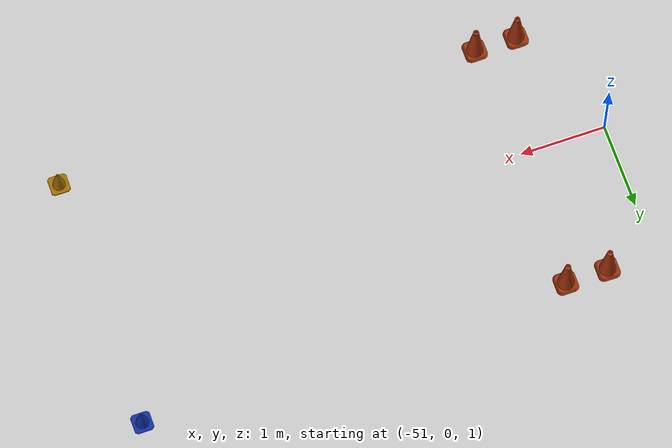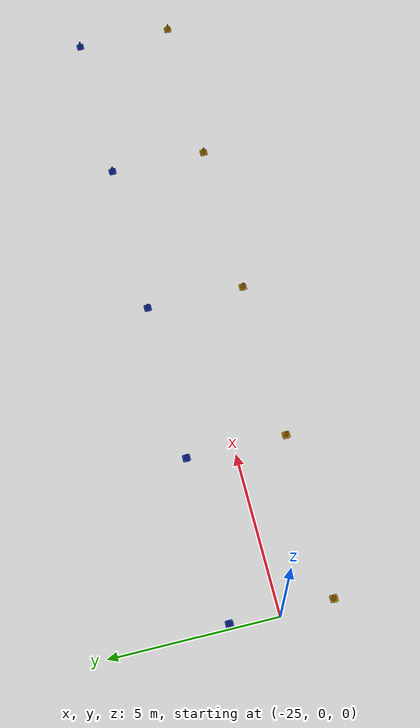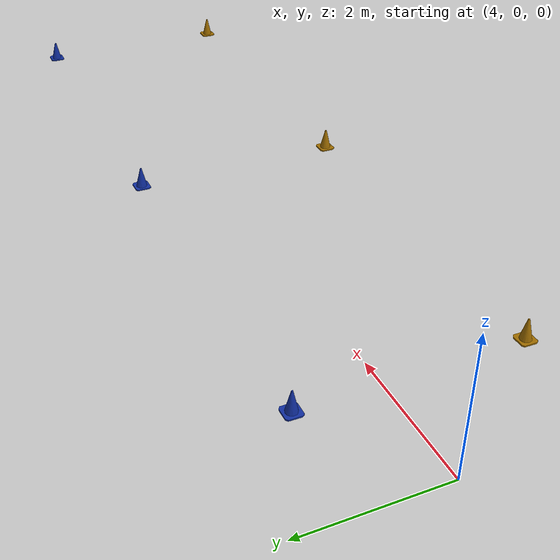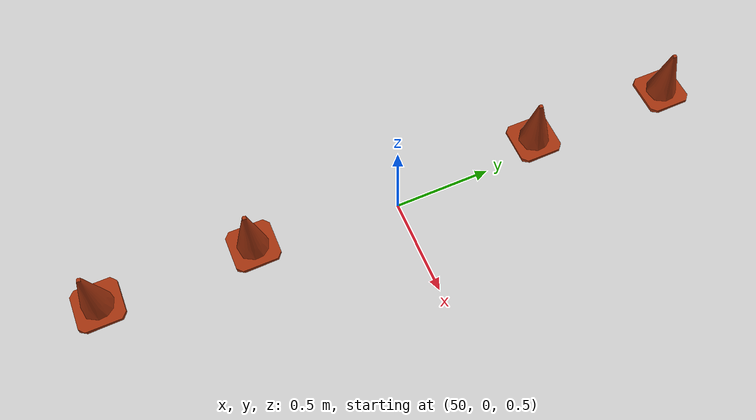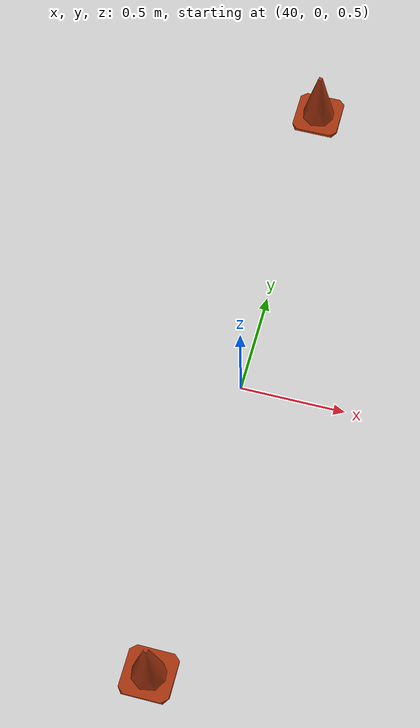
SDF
<sdf version='1.6'>
  <world name='acceleration'>
    <gui fullscreen='0'>
      <camera name='user_camera'>
        <pose frame=''>-40 40 20 0 0.667643 -1</pose>
        <view_controller>orbit</view_controller>
        <projection_type>perspective</projection_type>
      </camera>
    </gui>

    <!-- WORLD SETTINGS -->
    <scene>
      <ambient>1.0 1.0 1.0 1.0</ambient>
      <shadows>false</shadows>
    </scene>

    <spherical_coordinates>
      <heading_deg>180</heading_deg>

      <!-- Appleton Tower coordinates -->
      <latitude_deg>-27.690733</latitude_deg>
      <longitude_deg>152.656715</longitude_deg>
    </spherical_coordinates>

    <light name='sun' type='directional'>
      <cast_shadows>1</cast_shadows>
      <pose frame=''>0 0 10 0 -0 0</pose>
      <diffuse>0.8 0.8 0.8 1</diffuse>
      <specular>0.1 0.1 0.1 1</specular>
      <attenuation>
        <range>1000</range>
        <constant>0.9</constant>
        <linear>0.01</linear>
        <quadratic>0.001</quadratic>
      </attenuation>
      <direction>-0.5 0.5 -1</direction>
    </light>

    <!-- MODELS -->
    <include>
      <uri>model://ground_plane</uri>
      <pose>0.0 0.0 0.0 0 0 0</pose>
    </include>

    <include>
      <uri>model://acceleration</uri>
      <pose>0 0 0.5 0 0 0</pose>
    </include>

  </world>
</sdf>

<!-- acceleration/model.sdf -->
<sdf version='1.6'>
  <model name='track'>

    <include>
      <pose>-45.0 1.5 0.15 0 0 0</pose>
      <uri>model://blue_cone</uri>
      <name>blue_cone_0</name>

      <covariance x="0.01" y="0.01" xy="0.0"/>

    </include>

    <include>
      <pose>-40.0 1.5 0.15 0 0 0</pose>
      <uri>model://blue_cone</uri>
      <name>blue_cone_1</name>

      <covariance x="0.01" y="0.01" xy="0.0"/>

    </include>

    <include>
      <pose>-35.0 1.5 0.15 0 0 0</pose>
      <uri>model://blue_cone</uri>
      <name>blue_cone_2</name>

      <covariance x="0.01" y="0.01" xy="0.0"/>

    </include>

    <include>
      <pose>-30.0 1.5 0.15 0 0 0</pose>
      <uri>model://blue_cone</uri>
      <name>blue_cone_3</name>

      <covariance x="0.01" y="0.01" xy="0.0"/>

    </include>

    <include>
      <pose>-25.0 1.5 0.15 0 0 0</pose>
      <uri>model://blue_cone</uri>
      <name>blue_cone_4</name>

      <covariance x="0.01" y="0.01" xy="0.0"/>

    </include>

    <include>
      <pose>-20.0 1.5 0.15 0 0 0</pose>
      <uri>model://blue_cone</uri>
      <name>blue_cone_5</name>

      <covariance x="0.01" y="0.01" xy="0.0"/>

    </include>

    <include>
      <pose>-15.0 1.5 0.15 0 0 0</pose>
      <uri>model://blue_cone</uri>
      <name>blue_cone_6</name>

      <covariance x="0.01" y="0.01" xy="0.0"/>

    </include>

    <include>
      <pose>-10.0 1.5 0.15 0 0 0</pose>
      <uri>model://blue_cone</uri>
      <name>blue_cone_7</name>

      <covariance x="0.01" y="0.01" xy="0.0"/>

    </include>

    <include>
      <pose>-5.0 1.5 0.15 0 0 0</pose>
      <uri>model://blue_cone</uri>
      <name>blue_cone_8</name>

      <covariance x="0.01" y="0.01" xy="0.0"/>

    </include>

    <include>
      <pose>0.0 1.5 0.15 0 0 0</pose>
      <uri>model://blue_cone</uri>
      <name>blue_cone_9</name>

      <covariance x="0.01" y="0.01" xy="0.0"/>

    </include>

    <include>
      <pose>5.0 1.5 0.15 0 0 0</pose>
      <uri>model://blue_cone</uri>
      <name>blue_cone_10</name>

      <covariance x="0.01" y="0.01" xy="0.0"/>

    </include>

    <include>
      <pose>10.0 1.5 0.15 0 0 0</pose>
      <uri>model://blue_cone</uri>
      <name>blue_cone_11</name>

      <covariance x="0.01" y="0.01" xy="0.0"/>

    </include>

    <include>
      <pose>15.0 1.5 0.15 0 0 0</pose>
      <uri>model://blue_cone</uri>
      <name>blue_cone_12</name>

      <covariance x="0.01" y="0.01" xy="0.0"/>

    </include>

    <include>
      <pose>20.0 1.5 0.15 0 0 0</pose>
      <uri>model://blue_cone</uri>
      <name>blue_cone_13</name>

      <covariance x="0.01" y="0.01" xy="0.0"/>

    </include>

    <include>
      <pose>-45.0 -1.5 0.15 0 0 0</pose>
      <uri>model://yellow_cone</uri>
      <name>yellow_cone_14</name>

      <covariance x="0.01" y="0.01" xy="0.0"/>

    </include>

    <include>
      <pose>-40.0 -1.5 0.15 0 0 0</pose>
      <uri>model://yellow_cone</uri>
      <name>yellow_cone_15</name>

      <covariance x="0.01" y="0.01" xy="0.0"/>

    </include>

    <include>
      <pose>-35.0 -1.5 0.15 0 0 0</pose>
      <uri>model://yellow_cone</uri>
      <name>yellow_cone_16</name>

      <covariance x="0.01" y="0.01" xy="0.0"/>

    </include>

    <include>
      <pose>-30.0 -1.5 0.15 0 0 0</pose>
      <uri>model://yellow_cone</uri>
      <name>yellow_cone_17</name>

      <covariance x="0.01" y="0.01" xy="0.0"/>

    </include>

    <include>
      <pose>-25.0 -1.5 0.15 0 0 0</pose>
      <uri>model://yellow_cone</uri>
      <name>yellow_cone_18</name>

      <covariance x="0.01" y="0.01" xy="0.0"/>

    </include>

    <include>
      <pose>-20.0 -1.5 0.15 0 0 0</pose>
      <uri>model://yellow_cone</uri>
      <name>yellow_cone_19</name>

      <covariance x="0.01" y="0.01" xy="0.0"/>

    </include>

    <include>
      <pose>-15.0 -1.5 0.15 0 0 0</pose>
      <uri>model://yellow_cone</uri>
      <name>yellow_cone_20</name>

      <covariance x="0.01" y="0.01" xy="0.0"/>

    </include>

    <include>
      <pose>-10.0 -1.5 0.15 0 0 0</pose>
      <uri>model://yellow_cone</uri>
      <name>yellow_cone_21</name>

      <covariance x="0.01" y="0.01" xy="0.0"/>

    </include>

    <include>
      <pose>-5.0 -1.5 0.15 0 0 0</pose>
      <uri>model://yellow_cone</uri>
      <name>yellow_cone_22</name>

      <covariance x="0.01" y="0.01" xy="0.0"/>

    </include>

    <include>
      <pose>0.0 -1.5 0.15 0 0 0</pose>
      <uri>model://yellow_cone</uri>
      <name>yellow_cone_23</name>

      <covariance x="0.01" y="0.01" xy="0.0"/>

    </include>

    <include>
      <pose>5.0 -1.5 0.15 0 0 0</pose>
      <uri>model://yellow_cone</uri>
      <name>yellow_cone_24</name>

      <covariance x="0.01" y="0.01" xy="0.0"/>

    </include>

    <include>
      <pose>10.0 -1.5 0.15 0 0 0</pose>
      <uri>model://yellow_cone</uri>
      <name>yellow_cone_25</name>

      <covariance x="0.01" y="0.01" xy="0.0"/>

    </include>

    <include>
      <pose>15.0 -1.5 0.15 0 0 0</pose>
      <uri>model://yellow_cone</uri>
      <name>yellow_cone_26</name>

      <covariance x="0.01" y="0.01" xy="0.0"/>

    </include>

    <include>
      <pose>20.0 -1.5 0.15 0 0 0</pose>
      <uri>model://yellow_cone</uri>
      <name>yellow_cone_27</name>

      <covariance x="0.01" y="0.01" xy="0.0"/>

    </include>

    <include>
      <pose>30.0 1.5 0.15 0 0 0</pose>
      <uri>model://orange_cone</uri>
      <name>orange_cone_28</name>

      <covariance x="0.01" y="0.01" xy="0.0"/>

    </include>

    <include>
      <pose>30.0 -1.5 0.15 0 0 0</pose>
      <uri>model://orange_cone</uri>
      <name>orange_cone_29</name>

      <covariance x="0.01" y="0.01" xy="0.0"/>

    </include>

    <include>
      <pose>35.0 1.5 0.15 0 0 0</pose>
      <uri>model://orange_cone</uri>
      <name>orange_cone_30</name>

      <covariance x="0.01" y="0.01" xy="0.0"/>

    </include>

    <include>
      <pose>35.0 -1.5 0.15 0 0 0</pose>
      <uri>model://orange_cone</uri>
      <name>orange_cone_31</name>

      <covariance x="0.01" y="0.01" xy="0.0"/>

    </include>

    <include>
      <pose>40.0 1.5 0.15 0 0 0</pose>
      <uri>model://orange_cone</uri>
      <name>orange_cone_32</name>

      <covariance x="0.01" y="0.01" xy="0.0"/>

    </include>

    <include>
      <pose>40.0 -1.5 0.15 0 0 0</pose>
      <uri>model://orange_cone</uri>
      <name>orange_cone_33</name>

      <covariance x="0.01" y="0.01" xy="0.0"/>

    </include>

    <include>
      <pose>45.0 1.5 0.15 0 0 0</pose>
      <uri>model://orange_cone</uri>
      <name>orange_cone_34</name>

      <covariance x="0.01" y="0.01" xy="0.0"/>

    </include>

    <include>
      <pose>45.0 -1.5 0.15 0 0 0</pose>
      <uri>model://orange_cone</uri>
      <name>orange_cone_35</name>

      <covariance x="0.01" y="0.01" xy="0.0"/>

    </include>

    <include>
      <pose>50.0 1.5 0.15 0 0 0</pose>
      <uri>model://orange_cone</uri>
      <name>orange_cone_36</name>

      <covariance x="0.01" y="0.01" xy="0.0"/>

    </include>

    <include>
      <pose>50.0 -1.5 0.15 0 0 0</pose>
      <uri>model://orange_cone</uri>
      <name>orange_cone_37</name>

      <covariance x="0.01" y="0.01" xy="0.0"/>

    </include>

    <include>
      <pose>50.0 0.75 0.15 0 0 0</pose>
      <uri>model://orange_cone</uri>
      <name>orange_cone_38</name>

      <covariance x="0.01" y="0.01" xy="0.0"/>

    </include>

    <include>
      <pose>50.0 -0.75 0.15 0 0 0</pose>
      <uri>model://orange_cone</uri>
      <name>orange_cone_39</name>

      <covariance x="0.01" y="0.01" xy="0.0"/>

    </include>

    <include>
      <pose>-50.0 1.5 0.15 0 0 0</pose>
      <uri>model://big_cone</uri>
      <name>big_cone_40</name>

      <covariance x="0.01" y="0.01" xy="0.0"/>

    </include>

    <include>
      <pose>-50.0 -1.5 0.15 0 0 0</pose>
      <uri>model://big_cone</uri>
      <name>big_cone_41</name>

      <covariance x="0.01" y="0.01" xy="0.0"/>

    </include>

    <include>
      <pose>-50.5 1.5 0.15 0 0 0</pose>
      <uri>model://big_cone</uri>
      <name>big_cone_42</name>

      <covariance x="0.01" y="0.01" xy="0.0"/>

    </include>

    <include>
      <pose>-50.5 -1.5 0.15 0 0 0</pose>
      <uri>model://big_cone</uri>
      <name>big_cone_43</name>

      <covariance x="0.01" y="0.01" xy="0.0"/>

    </include>

    <include>
      <pose>25.0 1.5 0.15 0 0 0</pose>
      <uri>model://big_cone</uri>
      <name>big_cone_44</name>

      <covariance x="0.01" y="0.01" xy="0.0"/>

    </include>

    <include>
      <pose>25.0 -1.5 0.15 0 0 0</pose>
      <uri>model://big_cone</uri>
      <name>big_cone_45</name>

      <covariance x="0.01" y="0.01" xy="0.0"/>

    </include>

    <static>0</static>
    <allow_auto_disable>1</allow_auto_disable>
  </model>
</sdf>

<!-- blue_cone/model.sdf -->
<sdf version='1.6'>
  <model name='blue_cone'>
    <link name='link'>
      <pose frame=''>0 0 0 0 0 0</pose>
      <inertial>
        <inertia>
          <ixx>0.0016</ixx>
          <ixy>0</ixy>
          <ixz>0</ixz>
          <iyy>0.0016</iyy>
          <iyz>0</iyz>
          <izz>0.0010</izz>
        </inertia>
        <mass>0.45</mass>
      </inertial>
      <visual name='visual'>
        <geometry>
          <mesh>
            <uri>model://cone_blue.dae</uri>
          </mesh>
        </geometry>
        <cast_shadows>1</cast_shadows>
      </visual>
      <collision name='collision'>
        <max_contacts>3</max_contacts>
        <geometry>
          <mesh>
            <uri>model://cone_blue.dae</uri>
          </mesh>
        </geometry>
      </collision>
    </link>
  </model>
</sdf>

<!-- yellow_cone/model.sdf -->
<sdf version='1.6'>
  <model name='yellow_cone'>
    <link name='link'>
      <pose frame=''>0 0 0 0 0 0</pose>
      <inertial>
        <inertia>
          <ixx>0.0016</ixx>
          <ixy>0</ixy>
          <ixz>0</ixz>
          <iyy>0.0016</iyy>
          <iyz>0</iyz>
          <izz>0.0010</izz>
        </inertia>
        <mass>0.45</mass>
      </inertial>
      <visual name='visual'>
        <geometry>
          <mesh>
            <uri>model://cone_yellow.dae</uri>
          </mesh>
        </geometry>
        <cast_shadows>1</cast_shadows>
      </visual>
      <collision name='collision'>
        <max_contacts>3</max_contacts>
        <geometry>
          <mesh>
            <uri>model://cone_yellow.dae</uri>
          </mesh>
        </geometry>
      </collision>
    </link>
  </model>
</sdf>

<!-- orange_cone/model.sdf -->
<sdf version='1.6'>
  <model name='orange_cone'>
    <link name='link'>
      <pose frame=''>0 0 0 0 0 0</pose>
      <inertial>
        <inertia>
          <ixx>0.0016</ixx>
          <ixy>0</ixy>
          <ixz>0</ixz>
          <iyy>0.0016</iyy>
          <iyz>0</iyz>
          <izz>0.0010</izz>
        </inertia>
        <mass>0.45</mass>
      </inertial>
      <visual name='visual'>
        <geometry>
          <mesh>
            <uri>file://cone.dae</uri>
          </mesh>
        </geometry>
        <cast_shadows>1</cast_shadows>
      </visual>
      <collision name='collision'>
        <max_contacts>3</max_contacts>
        <geometry>
          <mesh>
            <uri>file://cone.dae</uri>
          </mesh>
        </geometry>
      </collision>
    </link>
  </model>
</sdf>

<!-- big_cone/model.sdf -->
<sdf version='1.6'>
  <model name='big_cone'>
    <link name='link'>
      <pose frame=''>0 0 0 0 0 0</pose>
      <inertial>
        <inertia>
          <ixx>0.0016</ixx>
          <ixy>0</ixy>
          <ixz>0</ixz>
          <iyy>0.0016</iyy>
          <iyz>0</iyz>
          <izz>0.0010</izz>
        </inertia>
        <mass>0.45</mass>
      </inertial>
      <visual name='visual'>
        <geometry>
          <mesh>
            <uri>model://cone_big.dae</uri>
          </mesh>
        </geometry>
        <cast_shadows>1</cast_shadows>
      </visual>
      <collision name='collision'>
        <max_contacts>3</max_contacts>
        <geometry>
          <mesh>
            <uri>model://cone_big.dae</uri>
          </mesh>
        </geometry>
      </collision>
    </link>
  </model>
</sdf>
